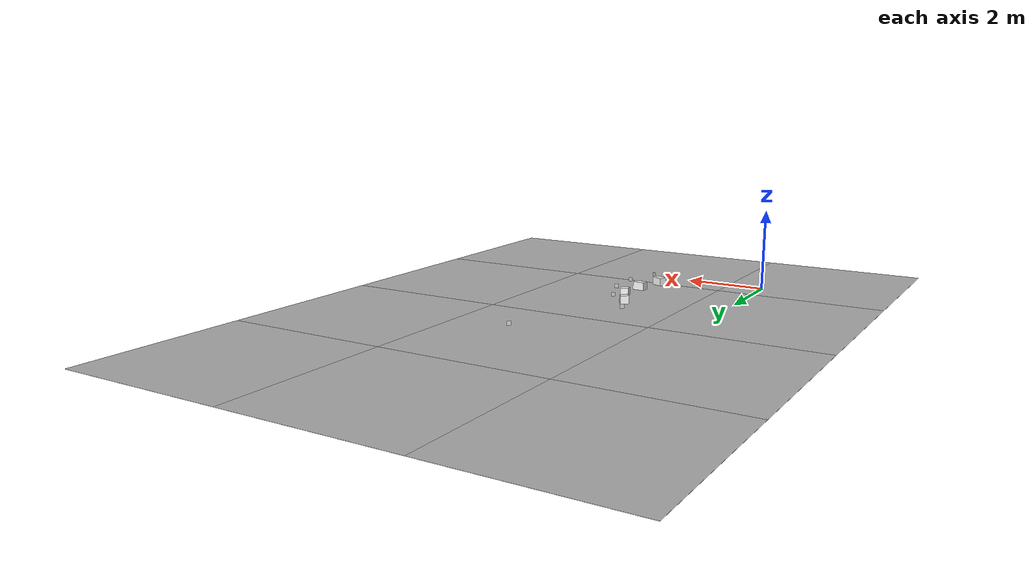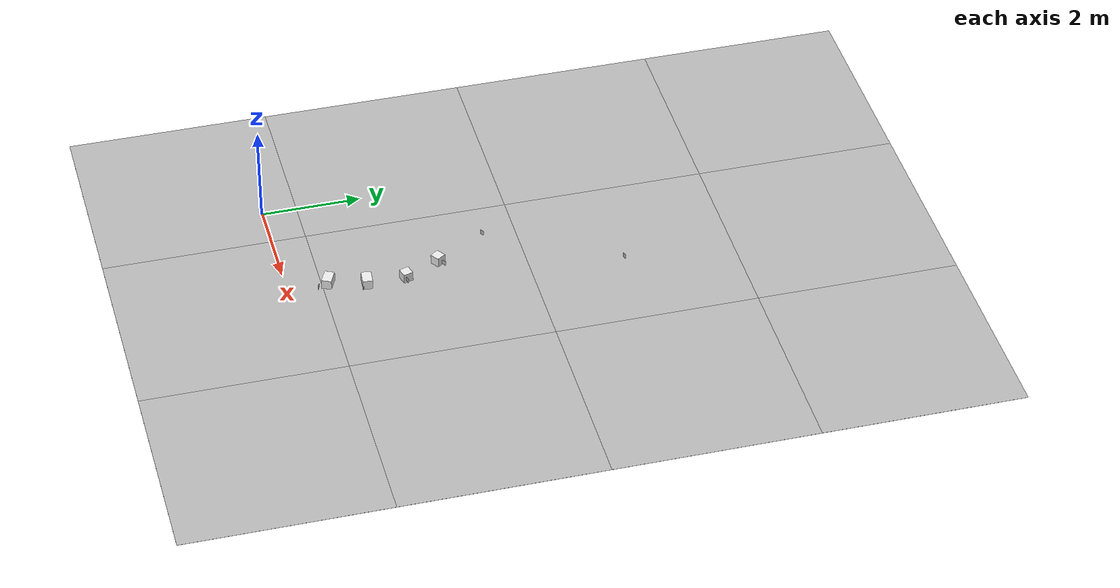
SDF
<sdf version="1.6">
 <world name="default">
  <light name="sun_light" type="directional">
   <pose>0 0 10 0 -0 0</pose>
   <diffuse>0.5 0.5 0.5 1</diffuse>
   <specular>0.1 0.1 0.1 1</specular>
   <direction>0.1 0.1 -0.9</direction>
   <attenuation>
    <range>20</range>
    <constant>0.5</constant>
    <linear>0.01</linear>
    <quadratic>0.001</quadratic>
   </attenuation>
  </light>
  <model name="Tile/0-0">
   <static>1</static>
   <link name="link">
    <collision name="collision">
     <geometry><plane><normal>0 0 1</normal><size>4.096 4.096</size></plane></geometry>
     <surface><friction><ode><mu>100</mu><mu2>50</mu2></ode></friction></surface>
    </collision>
    <visual name="visual">
     <cast_shadows>0</cast_shadows>
     <geometry><plane><normal>0 0 1</normal><size>4.096 4.096</size></plane></geometry>
     <material>
      <script>
       <uri>file://materials/scripts</uri>
       <uri>file://materials/textures</uri>
       <name>Tile/7c119170f6752fdedfda089e917865d35f262c6d82fb32c32e24d09110dae41b</name>
      </script>
     </material>
    </visual>
   </link>
   <pose>-1.1321348646443186 -1.3519999999999999 0 0 -0 0</pose>
  </model>
  <model name="Tile/0-1">
   <static>1</static>
   <link name="link">
    <collision name="collision">
     <geometry><plane><normal>0 0 1</normal><size>4.096 4.096</size></plane></geometry>
     <surface><friction><ode><mu>100</mu><mu2>50</mu2></ode></friction></surface>
    </collision>
    <visual name="visual">
     <cast_shadows>0</cast_shadows>
     <geometry><plane><normal>0 0 1</normal><size>4.096 4.096</size></plane></geometry>
     <material>
      <script>
       <uri>file://materials/scripts</uri>
       <uri>file://materials/textures</uri>
       <name>Tile/3329aed7d8e2f6038c0b530c8c1f3b600896e1160061d2fabcc765fef2d052b8</name>
      </script>
     </material>
    </visual>
   </link>
   <pose>-1.1321348646443186 2.744 0 0 -0 0</pose>
  </model>
  <model name="Tile/0-2">
   <static>1</static>
   <link name="link">
    <collision name="collision">
     <geometry><plane><normal>0 0 1</normal><size>4.096 4.096</size></plane></geometry>
     <surface><friction><ode><mu>100</mu><mu2>50</mu2></ode></friction></surface>
    </collision>
    <visual name="visual">
     <cast_shadows>0</cast_shadows>
     <geometry><plane><normal>0 0 1</normal><size>4.096 4.096</size></plane></geometry>
     <material>
      <script>
       <uri>file://materials/scripts</uri>
       <uri>file://materials/textures</uri>
       <name>Tile/3072cfd345d7b0bb5db0f52ec363b94dd8a53d4c427237b4b3f471febbe3d74a</name>
      </script>
     </material>
    </visual>
   </link>
   <pose>-1.1321348646443186 6.84 0 0 -0 0</pose>
  </model>
  <model name="Tile/0-3">
   <static>1</static>
   <link name="link">
    <collision name="collision">
     <geometry><plane><normal>0 0 1</normal><size>4.096 4.096</size></plane></geometry>
     <surface><friction><ode><mu>100</mu><mu2>50</mu2></ode></friction></surface>
    </collision>
    <visual name="visual">
     <cast_shadows>0</cast_shadows>
     <geometry><plane><normal>0 0 1</normal><size>4.096 4.096</size></plane></geometry>
     <material>
      <script>
       <uri>file://materials/scripts</uri>
       <uri>file://materials/textures</uri>
       <name>Tile/5eab350b8220ac9944dbdfa4ac3288c7c17e24c3bf5df0dfcf6173d64dae00a1</name>
      </script>
     </material>
    </visual>
   </link>
   <pose>-1.1321348646443186 10.936 0 0 -0 0</pose>
  </model>
  <model name="Tile/1-0">
   <static>1</static>
   <link name="link">
    <collision name="collision">
     <geometry><plane><normal>0 0 1</normal><size>4.096 4.096</size></plane></geometry>
     <surface><friction><ode><mu>100</mu><mu2>50</mu2></ode></friction></surface>
    </collision>
    <visual name="visual">
     <cast_shadows>0</cast_shadows>
     <geometry><plane><normal>0 0 1</normal><size>4.096 4.096</size></plane></geometry>
     <material>
      <script>
       <uri>file://materials/scripts</uri>
       <uri>file://materials/textures</uri>
       <name>Tile/0f94448c2ee481f2dd6ae8ceb4f096759dc62e92abb97142113e189ca90fb3c6</name>
      </script>
     </material>
    </visual>
   </link>
   <pose>2.9638651353556815 -1.3519999999999999 0 0 -0 0</pose>
  </model>
  <model name="Tile/1-1">
   <static>1</static>
   <link name="link">
    <collision name="collision">
     <geometry><plane><normal>0 0 1</normal><size>4.096 4.096</size></plane></geometry>
     <surface><friction><ode><mu>100</mu><mu2>50</mu2></ode></friction></surface>
    </collision>
    <visual name="visual">
     <cast_shadows>0</cast_shadows>
     <geometry><plane><normal>0 0 1</normal><size>4.096 4.096</size></plane></geometry>
     <material>
      <script>
       <uri>file://materials/scripts</uri>
       <uri>file://materials/textures</uri>
       <name>Tile/0c5b08b74fd095779253a72ef84ff121c614c95d6fab48a94a9edd0e8e255719</name>
      </script>
     </material>
    </visual>
   </link>
   <pose>2.9638651353556815 2.744 0 0 -0 0</pose>
  </model>
  <model name="Tile/1-2">
   <static>1</static>
   <link name="link">
    <collision name="collision">
     <geometry><plane><normal>0 0 1</normal><size>4.096 4.096</size></plane></geometry>
     <surface><friction><ode><mu>100</mu><mu2>50</mu2></ode></friction></surface>
    </collision>
    <visual name="visual">
     <cast_shadows>0</cast_shadows>
     <geometry><plane><normal>0 0 1</normal><size>4.096 4.096</size></plane></geometry>
     <material>
      <script>
       <uri>file://materials/scripts</uri>
       <uri>file://materials/textures</uri>
       <name>Tile/c7fed32feee412d571ddf13d84ebc727d23408299fd8920b90dff9dba6535468</name>
      </script>
     </material>
    </visual>
   </link>
   <pose>2.9638651353556815 6.84 0 0 -0 0</pose>
  </model>
  <model name="Tile/1-3">
   <static>1</static>
   <link name="link">
    <collision name="collision">
     <geometry><plane><normal>0 0 1</normal><size>4.096 4.096</size></plane></geometry>
     <surface><friction><ode><mu>100</mu><mu2>50</mu2></ode></friction></surface>
    </collision>
    <visual name="visual">
     <cast_shadows>0</cast_shadows>
     <geometry><plane><normal>0 0 1</normal><size>4.096 4.096</size></plane></geometry>
     <material>
      <script>
       <uri>file://materials/scripts</uri>
       <uri>file://materials/textures</uri>
       <name>Tile/5eab350b8220ac9944dbdfa4ac3288c7c17e24c3bf5df0dfcf6173d64dae00a1</name>
      </script>
     </material>
    </visual>
   </link>
   <pose>2.9638651353556815 10.936 0 0 -0 0</pose>
  </model>
  <model name="Tile/2-0">
   <static>1</static>
   <link name="link">
    <collision name="collision">
     <geometry><plane><normal>0 0 1</normal><size>4.096 4.096</size></plane></geometry>
     <surface><friction><ode><mu>100</mu><mu2>50</mu2></ode></friction></surface>
    </collision>
    <visual name="visual">
     <cast_shadows>0</cast_shadows>
     <geometry><plane><normal>0 0 1</normal><size>4.096 4.096</size></plane></geometry>
     <material>
      <script>
       <uri>file://materials/scripts</uri>
       <uri>file://materials/textures</uri>
       <name>Tile/5eab350b8220ac9944dbdfa4ac3288c7c17e24c3bf5df0dfcf6173d64dae00a1</name>
      </script>
     </material>
    </visual>
   </link>
   <pose>7.059865135355682 -1.3519999999999999 0 0 -0 0</pose>
  </model>
  <model name="Tile/2-1">
   <static>1</static>
   <link name="link">
    <collision name="collision">
     <geometry><plane><normal>0 0 1</normal><size>4.096 4.096</size></plane></geometry>
     <surface><friction><ode><mu>100</mu><mu2>50</mu2></ode></friction></surface>
    </collision>
    <visual name="visual">
     <cast_shadows>0</cast_shadows>
     <geometry><plane><normal>0 0 1</normal><size>4.096 4.096</size></plane></geometry>
     <material>
      <script>
       <uri>file://materials/scripts</uri>
       <uri>file://materials/textures</uri>
       <name>Tile/adf6e184d4397a63ff2d80445010ed339b0e21e816502d1d32013448b7ad8726</name>
      </script>
     </material>
    </visual>
   </link>
   <pose>7.059865135355682 2.744 0 0 -0 0</pose>
  </model>
  <model name="Tile/2-2">
   <static>1</static>
   <link name="link">
    <collision name="collision">
     <geometry><plane><normal>0 0 1</normal><size>4.096 4.096</size></plane></geometry>
     <surface><friction><ode><mu>100</mu><mu2>50</mu2></ode></friction></surface>
    </collision>
    <visual name="visual">
     <cast_shadows>0</cast_shadows>
     <geometry><plane><normal>0 0 1</normal><size>4.096 4.096</size></plane></geometry>
     <material>
      <script>
       <uri>file://materials/scripts</uri>
       <uri>file://materials/textures</uri>
       <name>Tile/5eab350b8220ac9944dbdfa4ac3288c7c17e24c3bf5df0dfcf6173d64dae00a1</name>
      </script>
     </material>
    </visual>
   </link>
   <pose>7.059865135355682 6.84 0 0 -0 0</pose>
  </model>
  <model name="Tile/2-3">
   <static>1</static>
   <link name="link">
    <collision name="collision">
     <geometry><plane><normal>0 0 1</normal><size>4.096 4.096</size></plane></geometry>
     <surface><friction><ode><mu>100</mu><mu2>50</mu2></ode></friction></surface>
    </collision>
    <visual name="visual">
     <cast_shadows>0</cast_shadows>
     <geometry><plane><normal>0 0 1</normal><size>4.096 4.096</size></plane></geometry>
     <material>
      <script>
       <uri>file://materials/scripts</uri>
       <uri>file://materials/textures</uri>
       <name>Tile/5eab350b8220ac9944dbdfa4ac3288c7c17e24c3bf5df0dfcf6173d64dae00a1</name>
      </script>
     </material>
    </visual>
   </link>
   <pose>7.059865135355682 10.936 0 0 -0 0</pose>
  </model>
  <model name="Obstacle/-12/0">
   <pose>2.496580468050117 0.8235046377889127 0.1 0 0 1.1344640137963147</pose>
   <link name="link">
    <inertial>
     <mass>10</mass>
     <inertia>
      <ixx>0.166667</ixx>
      <ixy>0</ixy>
      <ixz>0</ixz>
      <iyy>0.166667</iyy>
      <iyz>0</iyz>
      <izz>0.166667</izz>
     </inertia>
    </inertial>
    <collision name="collision"><geometry><box><size>0.2 0.3 0.2</size></box></geometry></collision>
    <visual name="visual">
     <geometry><box><size>0.2 0.3 0.2</size></box></geometry>
     <material>
      <script><name>Gazebo/White</name><uri>file://media/materials/scripts/gazebo.material</uri></script>
     </material>
    </visual>
   </link>
  </model>
  <model name="Obstacle/-20/0">
   <pose>2.6922484836145824 1.560456863671536 0.1 0 0 1.4835298641951802</pose>
   <link name="link">
    <inertial>
     <mass>10</mass>
     <inertia>
      <ixx>0.166667</ixx>
      <ixy>0</ixy>
      <ixz>0</ixz>
      <iyy>0.166667</iyy>
      <iyz>0</iyz>
      <izz>0.166667</izz>
     </inertia>
    </inertial>
    <collision name="collision"><geometry><box><size>0.2 0.3 0.2</size></box></geometry></collision>
    <visual name="visual">
     <geometry><box><size>0.2 0.3 0.2</size></box></geometry>
     <material>
      <script><name>Gazebo/White</name><uri>file://media/materials/scripts/gazebo.material</uri></script>
     </material>
    </visual>
   </link>
  </model>
  <model name="Obstacle/-28/0">
   <pose>2.720656350672694 2.345769739443046 0.1 0 0 1.8325957145940457</pose>
   <link name="link">
    <inertial>
     <mass>10</mass>
     <inertia>
      <ixx>0.166667</ixx>
      <ixy>0</ixy>
      <ixz>0</ixz>
      <iyy>0.166667</iyy>
      <iyz>0</iyz>
      <izz>0.166667</izz>
     </inertia>
    </inertial>
    <collision name="collision"><geometry><box><size>0.2 0.2 0.2</size></box></geometry></collision>
    <visual name="visual">
     <geometry><box><size>0.2 0.2 0.2</size></box></geometry>
     <material>
      <script><name>Gazebo/White</name><uri>file://media/materials/scripts/gazebo.material</uri></script>
     </material>
    </visual>
   </link>
  </model>
  <model name="Obstacle/-36/0">
   <pose>2.3821656087636973 3.067556612066235 0.1 0 0 2.181661564992911</pose>
   <link name="link">
    <inertial>
     <mass>10</mass>
     <inertia>
      <ixx>0.166667</ixx>
      <ixy>0</ixy>
      <ixz>0</ixz>
      <iyy>0.166667</iyy>
      <iyz>0</iyz>
      <izz>0.166667</izz>
     </inertia>
    </inertial>
    <collision name="collision"><geometry><box><size>0.2 0.2 0.2</size></box></geometry></collision>
    <visual name="visual">
     <geometry><box><size>0.2 0.2 0.2</size></box></geometry>
     <material>
      <script><name>Gazebo/White</name><uri>file://media/materials/scripts/gazebo.material</uri></script>
     </material>
    </visual>
   </link>
  </model>
  <model name="Sign/-9">
   <static>1</static>
   <link name="link">
    <visual name="visual">
     <cast_shadows>0</cast_shadows>
     <geometry><plane><normal>0 0 1</normal><size>0.1 0.1</size></plane></geometry>
     <material>
      <script>
       <uri>file://materials/scripts</uri>
       <uri>file://materials/textures</uri>
       <name>Sign/stvo-625-10</name>
      </script>
     </material>
    </visual>
   </link>
   <pose>2.7694132760301713 0.5804259285408196 0.2 1.5707963267948966 0 5.846852994181004</pose>
  </model>
  <model name="Sign/-17">
   <static>1</static>
   <link name="link">
    <visual name="visual">
     <cast_shadows>0</cast_shadows>
     <geometry><plane><normal>0 0 1</normal><size>0.1 0.1</size></plane></geometry>
     <material>
      <script>
       <uri>file://materials/scripts</uri>
       <uri>file://materials/textures</uri>
       <name>Sign/stvo-625-10</name>
      </script>
     </material>
    </visual>
   </link>
   <pose>3.0317652749581887 1.4253519104102224 0.2 1.5707963267948966 0 6.19591884457987</pose>
  </model>
  <model name="Sign/-25">
   <static>1</static>
   <link name="link">
    <visual name="visual">
     <cast_shadows>0</cast_shadows>
     <geometry><plane><normal>0 0 1</normal><size>0.1 0.1</size></plane></geometry>
     <material>
      <script>
       <uri>file://materials/scripts</uri>
       <uri>file://materials/textures</uri>
       <name>Sign/stvo-625-10</name>
      </script>
     </material>
    </visual>
   </link>
   <pose>2.9893138069807255 2.3090522889583243 0.2 1.5707963267948966 0 6.544984694978735</pose>
  </model>
  <model name="Sign/-33">
   <static>1</static>
   <link name="link">
    <visual name="visual">
     <cast_shadows>0</cast_shadows>
     <geometry><plane><normal>0 0 1</normal><size>0.1 0.1</size></plane></geometry>
     <material>
      <script>
       <uri>file://materials/scripts</uri>
       <uri>file://materials/textures</uri>
       <name>Sign/stvo-625-10</name>
      </script>
     </material>
    </visual>
   </link>
   <pose>2.647179145652805 3.1249397565036525 0.2 1.5707963267948966 0 6.894050545377601</pose>
  </model>
  <model name="Sign/-49">
   <static>1</static>
   <link name="link">
    <visual name="visual">
     <cast_shadows>0</cast_shadows>
     <geometry><plane><normal>0 0 1</normal><size>0.1 0.1</size></plane></geometry>
     <material>
      <script>
       <uri>file://materials/scripts</uri>
       <uri>file://materials/textures</uri>
       <name>Sign/stvo-206</name>
      </script>
     </material>
    </visual>
   </link>
   <pose>1.9150619376353453 4.083339148054336 0.2 1.5707963267948966 0 6.894050545377601</pose>
  </model>
  <model name="Sign/-58">
   <static>1</static>
   <link name="link">
    <visual name="visual">
     <cast_shadows>0</cast_shadows>
     <geometry><plane><normal>0 0 1</normal><size>0.1 0.1</size></plane></geometry>
     <material>
      <script>
       <uri>file://materials/scripts</uri>
       <uri>file://materials/textures</uri>
       <name>Sign/stvo-208</name>
      </script>
     </material>
    </visual>
   </link>
   <pose>3.320020792107206 6.6376414145516724 0.2 1.5707963267948966 0 3.452864941277257</pose>
  </model>
 </world>
</sdf>
